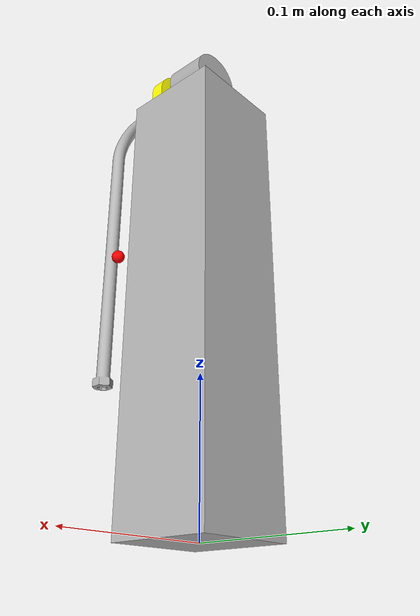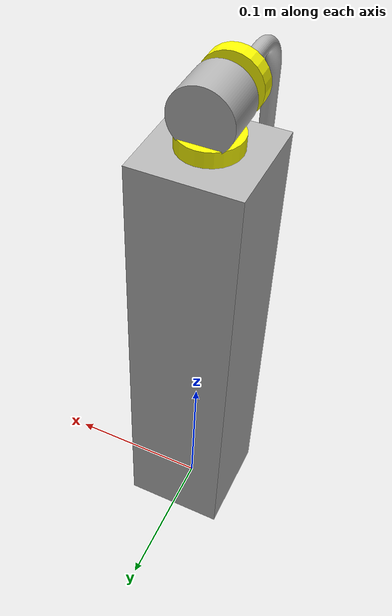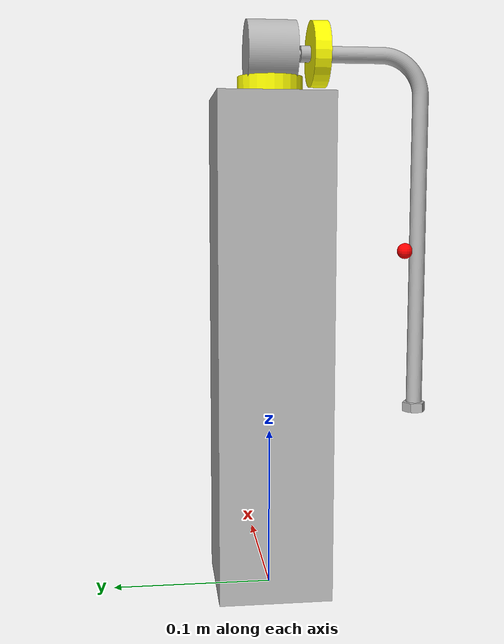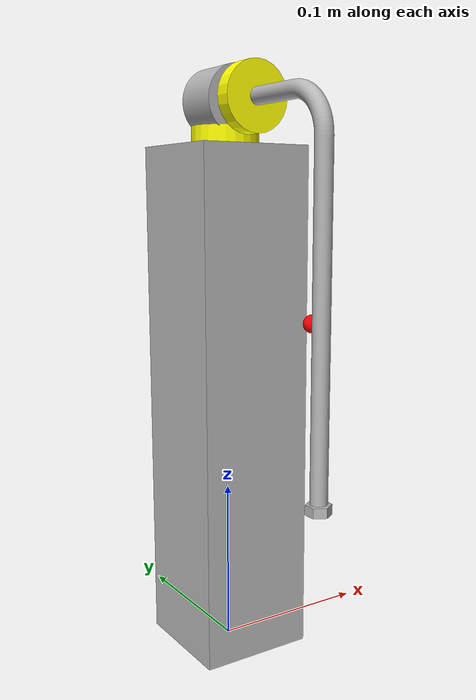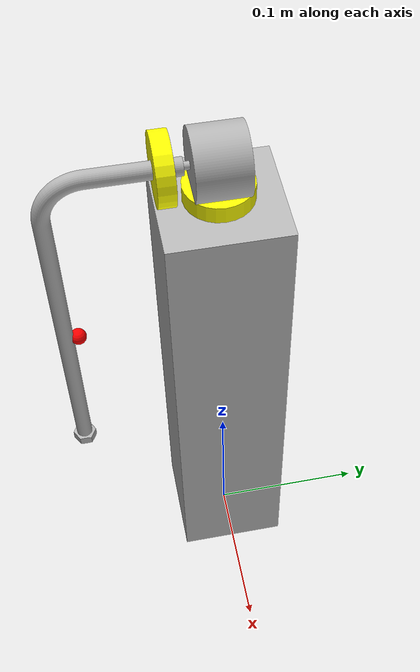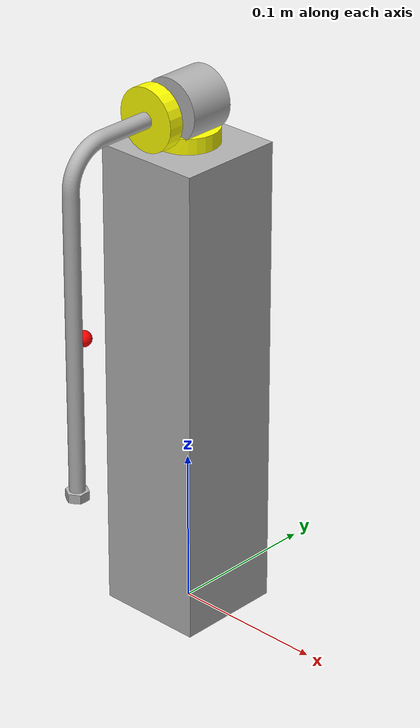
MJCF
<mujoco model="Pendel">
  <compiler angle="radian"/>
<option gravity="0 0 -9.81" timestep="0.001"/>

  <default>
    <geom conaffinity="0" contype="0"/>
  </default>

  <asset>
    <mesh name="base_link" content_type="model/stl" file="meshes/base_link.stl" scale="0.001 0.001 0.001"/>
    <mesh name="Pendel_1" content_type="model/stl" file="meshes/Pendel_1.stl" scale="0.001 0.001 0.001"/>
    <mesh name="Encoder_1" content_type="model/stl" file="meshes/Encoder_1.stl" scale="0.001 0.001 0.001"/>
  </asset>

  <worldbody>
    <geom type="mesh" rgba="0.7 0.7 0.7 1" mesh="base_link"/>

    <body name="Encoder_1" pos="0 0 0.316">
      <inertial pos="4.28223e-08 -0.000135348 0.0190114" quat="0.707107 0 0 0.707107" mass="0.102359" diaginertia="2e-05 1.8e-05 1.8e-05"/>

      <geom name="rotary_joint_vis" type="cylinder" size="0.02 0.005" pos="0 0 0" rgba="1 1 0 1"/>

      <joint name="rotaryGelenk" pos="0 0 0" axis="0 0 1" range="-6.28318 6.28318" damping="0.005" frictionloss="0.00001"/>

      <geom pos="0 0 -0.316" quat="1 0 0 0" type="mesh" rgba="0.7 0.7 0.7 1" mesh="Encoder_1"/>

      <body name="Pendel_1" pos="0 -0.0295 0.019002">
        <inertial pos="0.000001 -0.057165 -0.120463" mass="0.017498" fullinertia="0.0001368 0.0001309 0.000006219 0 0 -0.000016371"/>

        <site name="schwerpunkt_marker" pos="0.000001 -0.057165 -0.120463" size="0.005" rgba="1 0 0 1" type="sphere"/>

        <geom name="pendel_joint_vis" type="cylinder" size="0.02 0.005" pos="0 0 0" quat="0.70710678 0.70710678 0 0" rgba="1 1 0 1"/>

        <joint name="pendelGelenk" pos="0 0 0" axis="0 -1 0" damping="0.000067" frictionloss="0.0"/>

        <geom pos="0 0.0295 -0.335002" type="mesh" rgba="0.7 0.7 0.7 1" mesh="Pendel_1"/>
      </body>
    </body>
  </worldbody>

<actuator>
    <position name="motor_rotary" joint="rotaryGelenk" kp="1000" ctrlrange="-6.28318 6.28318" forcerange="-0.2 0.2"/>
</actuator>

</mujoco>
